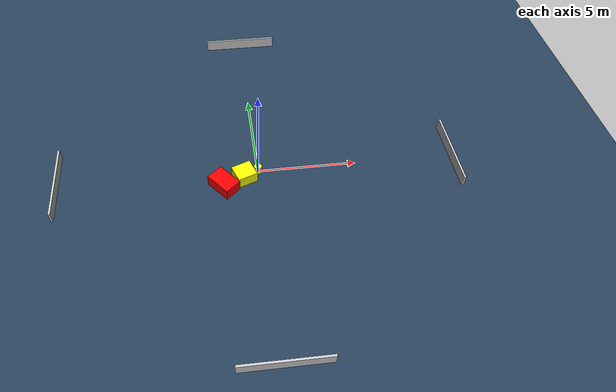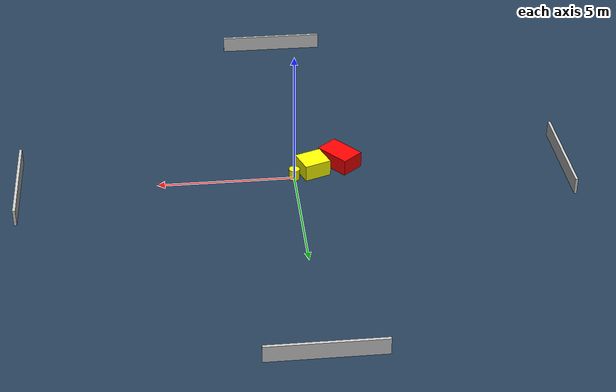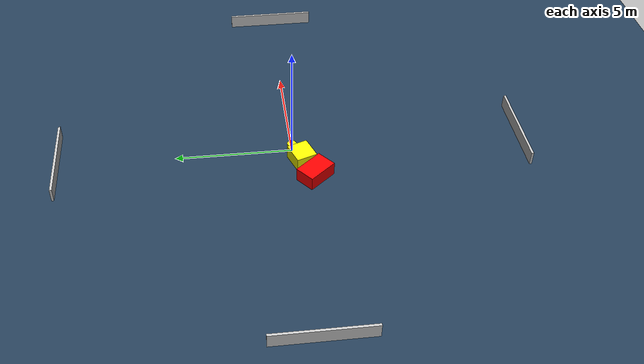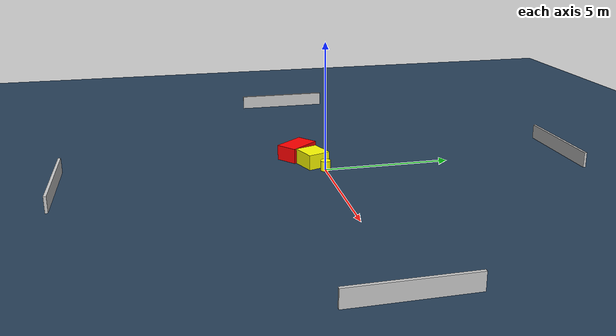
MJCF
<?xml version="1.0" ?>
<mujoco model="generated_environment">
  <option timestep="0.01" integrator="RK4" cone="elliptic"/>
  <default>
    <geom density="1"/>
  </default>
  <asset>
    <texture builtin="gradient" height="3072" name="skybox" rgb1="0.3 0.5 0.7" rgb2="0 0 0" type="skybox" width="512"/>
    <texture builtin="checker" height="300" name="groundplane" rgb1="0.2 0.3 0.4" rgb2="0.1 0.2 0.3" type="2d" width="300"/>
    <material name="groundplane" reflectance="0.2" texrepeat="5 5" texture="groundplane"/>
  </asset>
  <worldbody>
    <light dir="0 0 -1" directional="true" pos="0 0 1.5"/>
    <geom condim="3" friction="0.5 0.005 0.001" material="groundplane" name="floor" pos="0 0 0" size="0 0 0.05" type="plane"/>
    <body name="walls">
      <geom name="wall_1" condim="4" pos="-10.0 0.0 0.3" rgba="0.800000011920929 0.800000011920929 0.800000011920929 1.0" size="0.05 2.0 0.3" type="box"/>
      <geom name="wall_2" condim="4" pos="10.0 0.0 0.3" rgba="0.800000011920929 0.800000011920929 0.800000011920929 1.0" size="0.05 2.0 0.3" type="box"/>
      <geom name="wall_3" condim="4" pos="0.0 -10.0 0.3" rgba="0.800000011920929 0.800000011920929 0.800000011920929 1.0" size="2.0 0.05 0.3" type="box"/>
      <geom name="wall_4" condim="4" pos="0.0 10.0 0.3" rgba="0.800000011920929 0.800000011920929 0.800000011920929 1.0" size="2.0 0.05 0.3" type="box"/>
    </body>
    <body name="robot">
      <joint name="joint_x" type="slide" pos="0 0 0" axis="1 0 0"/>
      <joint name="joint_y" type="slide" pos="0 0 0" axis="0 1 0"/>
      <geom name="robot" type="cylinder" pos="0.0 0.0 0.2" size="0.2 0.2 0.0" mass="5.0" friction="1.0 0.005 0.0001" condim="4" rgba="1.0 1.0 0.0 1.0"/>
    </body>
    <body name="obstacle_1_movable">
      <geom name="obstacle_1_movable" condim="4" pos="-0.7169714597019914 -0.3537917166003518 0.3" euler="0 0 110.06195236709075" friction="0.0 0.005 0.001" rgba="1.0 1.0 0.0 1.0" size="0.45423996122516247 0.502066152646385 0.3" type="box" mass="0.1"/>
      <joint type="free"/>
    </body>
    <body name="obstacle_2_static">
      <geom name="obstacle_2_static" condim="4" pos="-1.7667980478124863 -0.7923422024408673 0.3" euler="0 0 309.71189933453695" friction="0.0 0.005 0.001" rgba="1.0 0.0 0.0 1.0" size="0.678998040040578 0.4437052064185375 0.3" type="box"/>
    </body>
  </worldbody>
  <actuator>
    <motor name="actuator_x" joint="joint_x" gear="1" ctrlrange="-1 1"/>
    <motor name="actuator_y" joint="joint_y" gear="1" ctrlrange="-1 1"/>
  </actuator>
</mujoco>
